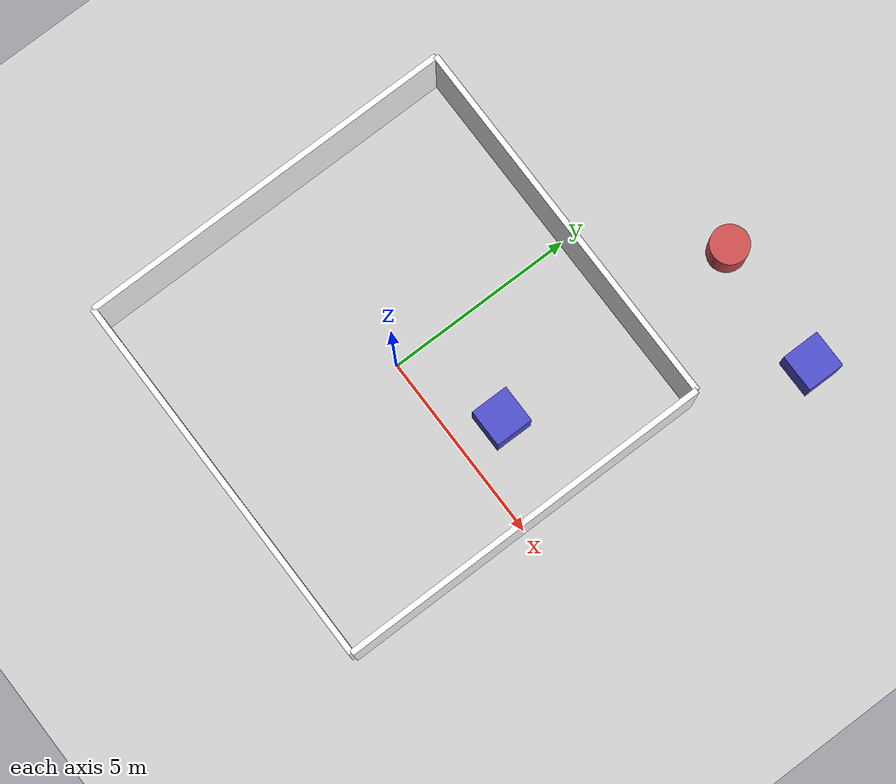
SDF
<?xml version="1.0" ?>
<sdf version='1.8'>
  <world name='default'>

    <!-- ============================================================
         REQUIRED IGNITION SYSTEM PLUGINS
         ============================================================ -->

    <!-- Core physics -->
    <plugin
        filename="gz-sim-physics-system"
        name="gz::sim::systems::Physics">
    </plugin>

    <!-- Allows the GUI / ROS nodes to move models, apply forces, etc. -->
    <plugin
        filename="gz-sim-user-commands-system"
        name="gz::sim::systems::UserCommands">
    </plugin>

    <!-- Broadcasts scene state to GUI -->
    <plugin
        filename="gz-sim-scene-broadcaster-system"
        name="gz::sim::systems::SceneBroadcaster">
    </plugin>

    <!-- Required for any sensor (lidar, camera, IMU …) to work -->
    <plugin
        filename="gz-sim-sensors-system"
        name="gz::sim::systems::Sensors">
      <render_engine>ogre2</render_engine>
    </plugin>

    <!-- IMU system (needed even if you only use the URDF IMU sensor) -->
    <plugin
        filename="gz-sim-imu-system"
        name="gz::sim::systems::Imu">
    </plugin>

    <!-- ============================================================
         LIGHTING
         ============================================================ -->
    <light name='sun' type='directional'>
      <cast_shadows>1</cast_shadows>
      <pose>0 0 10 0 -0 0</pose>
      <diffuse>0.8 0.8 0.8 1</diffuse>
      <specular>0.2 0.2 0.2 1</specular>
      <attenuation>
        <range>1000</range>
        <constant>0.9</constant>
        <linear>0.01</linear>
        <quadratic>0.001</quadratic>
      </attenuation>
      <direction>-0.5 0.1 -0.9</direction>
    </light>

    <!-- ============================================================
         GROUND PLANE
         ============================================================ -->
    <model name='ground_plane'>
      <static>1</static>
      <link name='link'>
        <collision name='collision'>
          <geometry>
            <plane>
              <normal>0 0 1</normal>
              <size>100 100</size>
            </plane>
          </geometry>
          <surface>
            <friction>
              <ode>
                <mu>100</mu>
                <mu2>50</mu2>
              </ode>
            </friction>
          </surface>
        </collision>
        <visual name='visual'>
          <cast_shadows>0</cast_shadows>
          <geometry>
            <plane>
              <normal>0 0 1</normal>
              <size>100 100</size>
            </plane>
          </geometry>
          <material>
            <ambient>0.8 0.8 0.8 1</ambient>
            <diffuse>0.8 0.8 0.8 1</diffuse>
            <specular>0.8 0.8 0.8 1</specular>
          </material>
        </visual>
      </link>
    </model>

    <!-- ============================================================
         PHYSICS
         ============================================================ -->
    <physics name='default_physics' default='0' type='ode'>
      <max_step_size>0.001</max_step_size>
      <real_time_factor>1</real_time_factor>
      <real_time_update_rate>1000</real_time_update_rate>
    </physics>

    <model name='room_walls'>
      <static>true</static>
      <pose>0 0 0 0 0 0</pose>

      <!-- Wall 1 – south -->
      <link name='Wall_1'>
        <pose>0 -5 0 0 0 0</pose>
        <collision name='Wall_1_Collision'>
          <geometry><box><size>10 0.15 2.5</size></box></geometry>
          <pose>0 0 1.25 0 0 0</pose>
        </collision>
        <visual name='Wall_1_Visual'>
          <pose>0 0 1.25 0 0 0</pose>
          <geometry><box><size>10 0.15 2.5</size></box></geometry>
          <material>
            <ambient>1 1 1 1</ambient>
            <diffuse>1 1 1 1</diffuse>
          </material>
        </visual>
      </link>

      <!-- Wall 2 – north -->
      <link name='Wall_2'>
        <pose>0 5 0 0 0 0</pose>
        <collision name='Wall_2_Collision'>
          <geometry><box><size>10 0.15 2.5</size></box></geometry>
          <pose>0 0 1.25 0 0 0</pose>
        </collision>
        <visual name='Wall_2_Visual'>
          <pose>0 0 1.25 0 0 0</pose>
          <geometry><box><size>10 0.15 2.5</size></box></geometry>
          <material>
            <ambient>1 1 1 1</ambient>
            <diffuse>1 1 1 1</diffuse>
          </material>
        </visual>
      </link>

      <!-- Wall 3 – west -->
      <link name='Wall_3'>
        <pose>-5 0 0 0 0 1.5708</pose>
        <collision name='Wall_3_Collision'>
          <geometry><box><size>10 0.15 2.5</size></box></geometry>
          <pose>0 0 1.25 0 0 0</pose>
        </collision>
        <visual name='Wall_3_Visual'>
          <pose>0 0 1.25 0 0 0</pose>
          <geometry><box><size>10 0.15 2.5</size></box></geometry>
          <material>
            <ambient>1 1 1 1</ambient>
            <diffuse>1 1 1 1</diffuse>
          </material>
        </visual>
      </link>

      <!-- Wall 4 – east -->
      <link name='Wall_4'>
        <pose>5 0 0 0 0 1.5708</pose>
        <collision name='Wall_4_Collision'>
          <geometry><box><size>10 0.15 2.5</size></box></geometry>
          <pose>0 0 1.25 0 0 0</pose>
        </collision>
        <visual name='Wall_4_Visual'>
          <pose>0 0 1.25 0 0 0</pose>
          <geometry><box><size>10 0.15 2.5</size></box></geometry>
          <material>
            <ambient>1 1 1 1</ambient>
            <diffuse>1 1 1 1</diffuse>
          </material>
        </visual>
      </link>
    </model>

    <!-- ============================================================
         OBSTACLES  (boxes + cylinder from original world)
         ============================================================ -->
    <model name='unit_box'>
      <pose>2.59462 1.17635 0.5 0 0 0</pose>
      <static>false</static>
      <link name='link'>
        <inertial><mass>1.0</mass></inertial>
        <collision name='collision'>
          <geometry><box><size>1 1 1</size></box></geometry>
        </collision>
        <visual name='visual'>
          <geometry><box><size>1 1 1</size></box></geometry>
          <material>
            <ambient>0.3 0.3 0.8 1</ambient>
            <diffuse>0.3 0.3 0.8 1</diffuse>
          </material>
        </visual>
      </link>
    </model>

    <model name='unit_box_0'>
      <pose>6.02233 7.8534 0.5 0 0 0</pose>
      <static>false</static>
      <link name='link'>
        <inertial><mass>1.0</mass></inertial>
        <collision name='collision'>
          <geometry><box><size>1 1 1</size></box></geometry>
        </collision>
        <visual name='visual'>
          <geometry><box><size>1 1 1</size></box></geometry>
          <material>
            <ambient>0.3 0.3 0.8 1</ambient>
            <diffuse>0.3 0.3 0.8 1</diffuse>
          </material>
        </visual>
      </link>
    </model>

    <model name='unit_cylinder'>
      <pose>2.60683 8.02008 0.5 0 0 0</pose>
      <static>false</static>
      <link name='link'>
        <inertial><mass>1.0</mass></inertial>
        <collision name='collision'>
          <geometry><cylinder><radius>0.5</radius><length>1.0</length></cylinder></geometry>
        </collision>
        <visual name='visual'>
          <geometry><cylinder><radius>0.5</radius><length>1.0</length></cylinder></geometry>
          <material>
            <ambient>0.8 0.3 0.3 1</ambient>
            <diffuse>0.8 0.3 0.3 1</diffuse>
          </material>
        </visual>
      </link>
    </model>

    <gui fullscreen="0">
      <plugin filename="GzScene3D" name="3D View">
        <gz-gui>
          <title>3D View</title>
          <property type="bool" key="showTitleBar">false</property>
          <property type="string" key="state">docked</property>
        </gz-gui>
        <engine>ogre2</engine>
        <scene>scene</scene>
        <ambient_light>0.4 0.4 0.4</ambient_light>
        <background_color>0.8 0.8 0.8</background_color>
        <camera_pose>0.78 4.87 30.47 0 1.51 1.36</camera_pose>
      </plugin>

      <plugin filename="WorldControl" name="World control">
        <gz-gui>
          <title>World control</title>
          <property type="bool" key="showTitleBar">false</property>
          <property type="bool" key="resizable">false</property>
          <property type="double" key="height">72</property>
          <property type="double" key="z">1</property>
          <property type="string" key="state">floating</property>
          <anchors target="3D View">
            <line own="left" target="left"/>
            <line own="bottom" target="bottom"/>
          </anchors>
        </gz-gui>
        <play_pause>true</play_pause>
        <step>true</step>
        <start_paused>false</start_paused>
      </plugin>

      <plugin filename="WorldStats" name="World stats">
        <gz-gui>
          <title>World stats</title>
          <property type="bool" key="showTitleBar">false</property>
          <property type="bool" key="resizable">false</property>
          <property type="double" key="height">110</property>
          <property type="double" key="width">290</property>
          <property type="double" key="z">1</property>
          <property type="string" key="state">floating</property>
          <anchors target="3D View">
            <line own="right" target="right"/>
            <line own="bottom" target="bottom"/>
          </anchors>
        </gz-gui>
        <sim_time>true</sim_time>
        <real_time>true</real_time>
        <real_time_factor>true</real_time_factor>
        <iterations>true</iterations>
      </plugin>
    </gui>

  </world>
</sdf>
